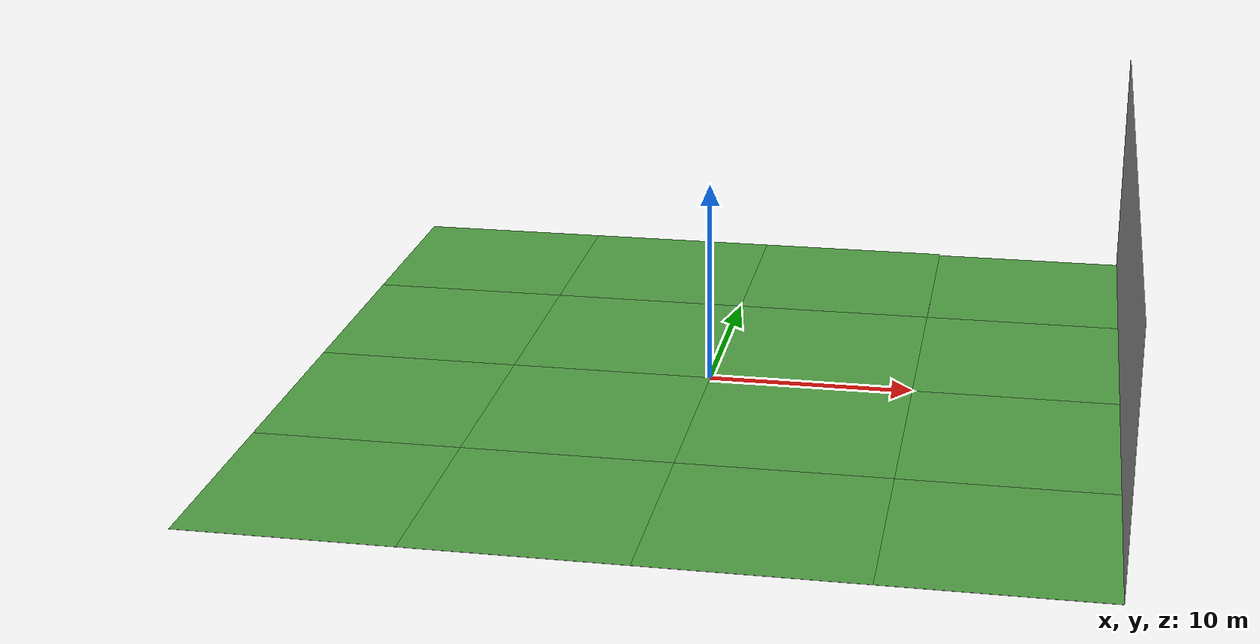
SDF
<sdf version="1.4">
 <world name="default">
  <scene><ambient>0.8 0.8 0.8 1.0</ambient><shadows>1</shadows></scene>
  <light type="directional" name="sun">
   <pose>0 0 10 0 0 0</pose>
   <diffuse>0.8 0.8 0.8 1</diffuse>
   <specular>0.2 0.2 0.2 1</specular>
   <attenuation>
    <range>1000</range>
    <constant>0.9</constant>
    <linear>0.01</linear>
    <quadratic>0.001</quadratic>
   </attenuation>
   <direction>0.9 -0.4 -0.9</direction>
  </light>
  <include><name>grass_0</name><uri>model://grass_plane</uri><pose>10 10 0 0 0 0</pose></include>
  <include><name>grass_1</name><uri>model://grass_plane</uri><pose>10 -10 0 0 0 0</pose></include>
  <include><name>grass_2</name><uri>model://grass_plane</uri><pose>-10 -10 0 0 0 0</pose></include>
  <include><name>grass_3</name><uri>model://grass_plane</uri><pose>-10 10 0 0 0 0</pose></include>
  <model name="mountain">
   <static>true</static>
   <link name="field">
    <visual name="mountain">
     <pose>20 0 6 1.5707963 0 -1.5707963</pose>
     <geometry><plane><size>40 12</size></plane></geometry>
     <material>
      <script>
       <uri>model://mountain/materials/scripts</uri>
       <uri>model://mountain/materials/textures</uri>
       <name>mountain</name>
      </script>
     </material>
    </visual>
   </link>
  </model>
  <spherical_coordinates>
   <surface_model>EARTH_WGS84</surface_model>
   <latitude_deg>47.3667</latitude_deg>
   <longitude_deg>8.5500</longitude_deg>
   <elevation>500.0</elevation>
   <heading_deg>0</heading_deg>
  </spherical_coordinates>
  <physics type="ode">
   <ode>
    <solver><type>quick</type><iters>1000</iters><sor>1.3</sor></solver>
    <constraints>
     <cfm>0</cfm>
     <erp>0.2</erp>
     <contact_max_correcting_vel>100</contact_max_correcting_vel>
     <contact_surface_layer>0.001</contact_surface_layer>
    </constraints>
   </ode>
   <max_step_size>0.005</max_step_size>
   <real_time_factor>1</real_time_factor>
   <real_time_update_rate>200</real_time_update_rate>
   <gravity>0 0 -9.8</gravity>
  </physics>
 </world>
</sdf>

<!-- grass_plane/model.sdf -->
<sdf version='1.4'>
  <model name='grass_plane'>
    <static>true</static>
    <link name='link'>
      <collision name='collision'>
        <geometry>
          <plane>
            <normal>0 0 1</normal>
            <size>20 20</size>
          </plane>
        </geometry>
        <surface>
          <friction>
            <ode>
              <mu>0.5</mu>
              <mu2>.5</mu2>
            </ode>
          </friction>
        </surface>
      </collision>

      <visual name='visual_0'>
        <pose>5 5 0 0 0 0</pose>

        <cast_shadows>false</cast_shadows>
        <geometry>
          <plane>
            <normal>0 0 1</normal>
            <size>10 10</size>
          </plane>
        </geometry>
        <material>
          <script>
            <uri>model://grass_plane/materials/scripts</uri>
            <uri>model://grass_plane/materials/textures</uri>
            <name>grass</name>
          </script>
        </material>
      </visual>
      <visual name='visual_1'>
        <pose>5 -5 0 0 0 0</pose>

        <cast_shadows>false</cast_shadows>
        <geometry>
          <plane>
            <normal>0 0 1</normal>
            <size>10 10</size>
          </plane>
        </geometry>
        <material>
          <script>
            <uri>model://grass_plane/materials/scripts</uri>
            <uri>model://grass_plane/materials/textures</uri>
            <name>grass</name>
          </script>
        </material>
      </visual>
      <visual name='visual_2'>
        <pose>-5 -5 0 0 0 0</pose>

        <cast_shadows>false</cast_shadows>
        <geometry>
          <plane>
            <normal>0 0 1</normal>
            <size>10 10</size>
          </plane>
        </geometry>
        <material>
          <script>
            <uri>model://grass_plane/materials/scripts</uri>
            <uri>model://grass_plane/materials/textures</uri>
            <name>grass</name>
          </script>
        </material>
      </visual>
      <visual name='visual_3'>
        <pose>-5 5 0 0 0 0</pose>

        <cast_shadows>false</cast_shadows>
        <geometry>
          <plane>
            <normal>0 0 1</normal>
            <size>10 10</size>
          </plane>
        </geometry>
        <material>
          <script>
            <uri>model://grass_plane/materials/scripts</uri>
            <uri>model://grass_plane/materials/textures</uri>
            <name>grass</name>
          </script>
        </material>
      </visual>
    </link>
  </model>
</sdf>
